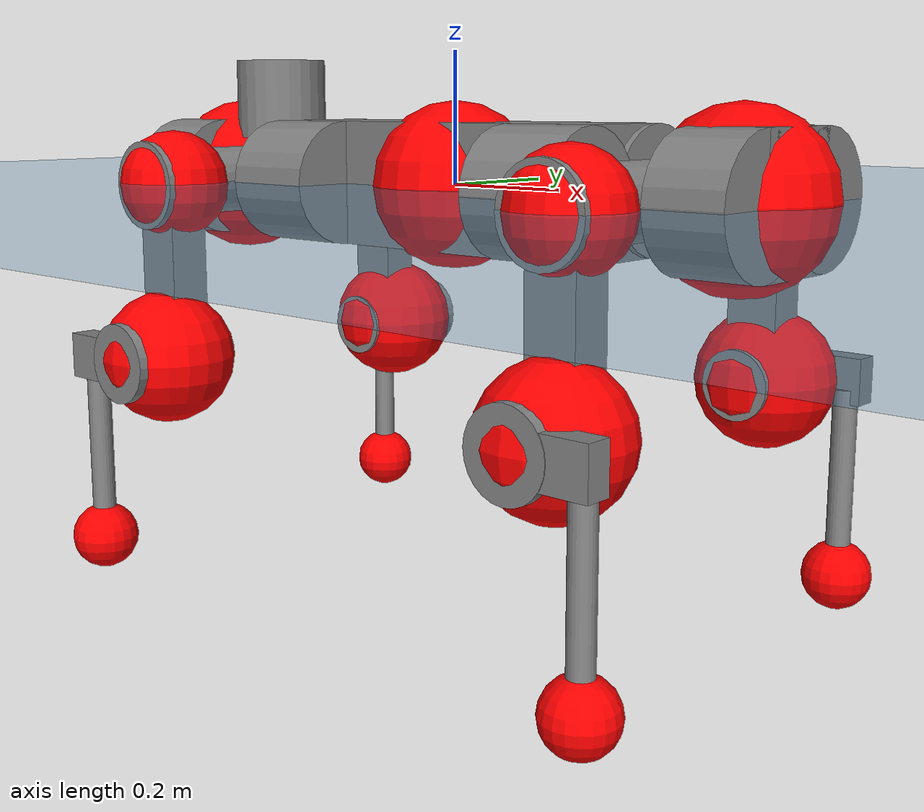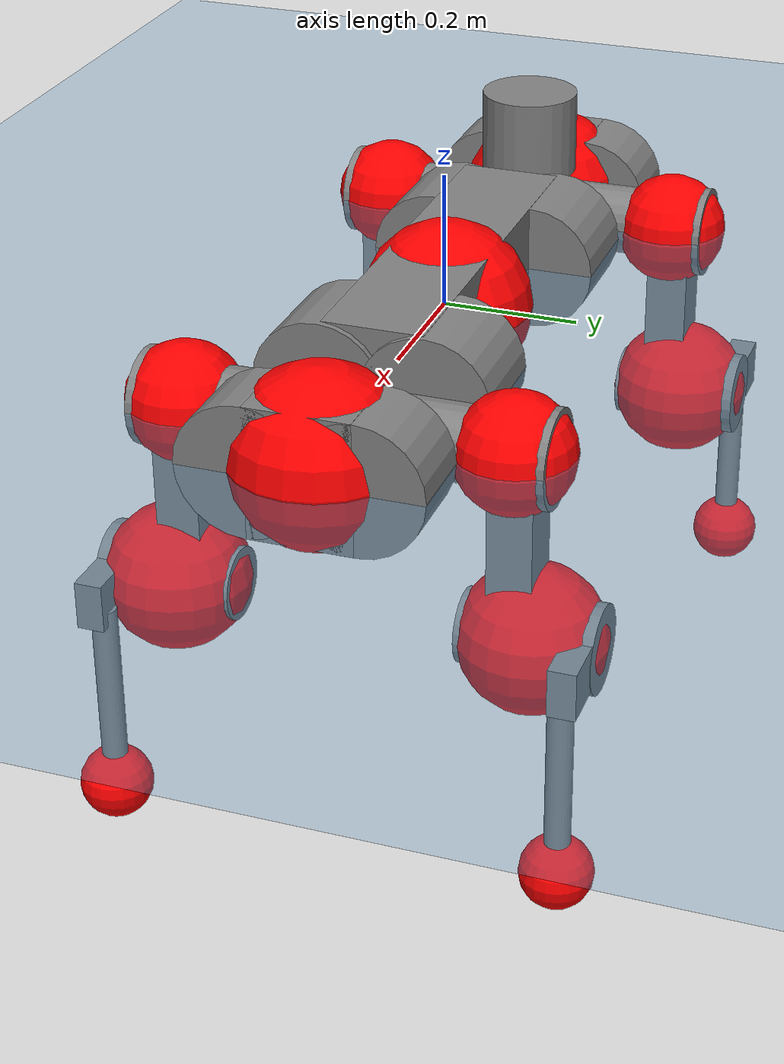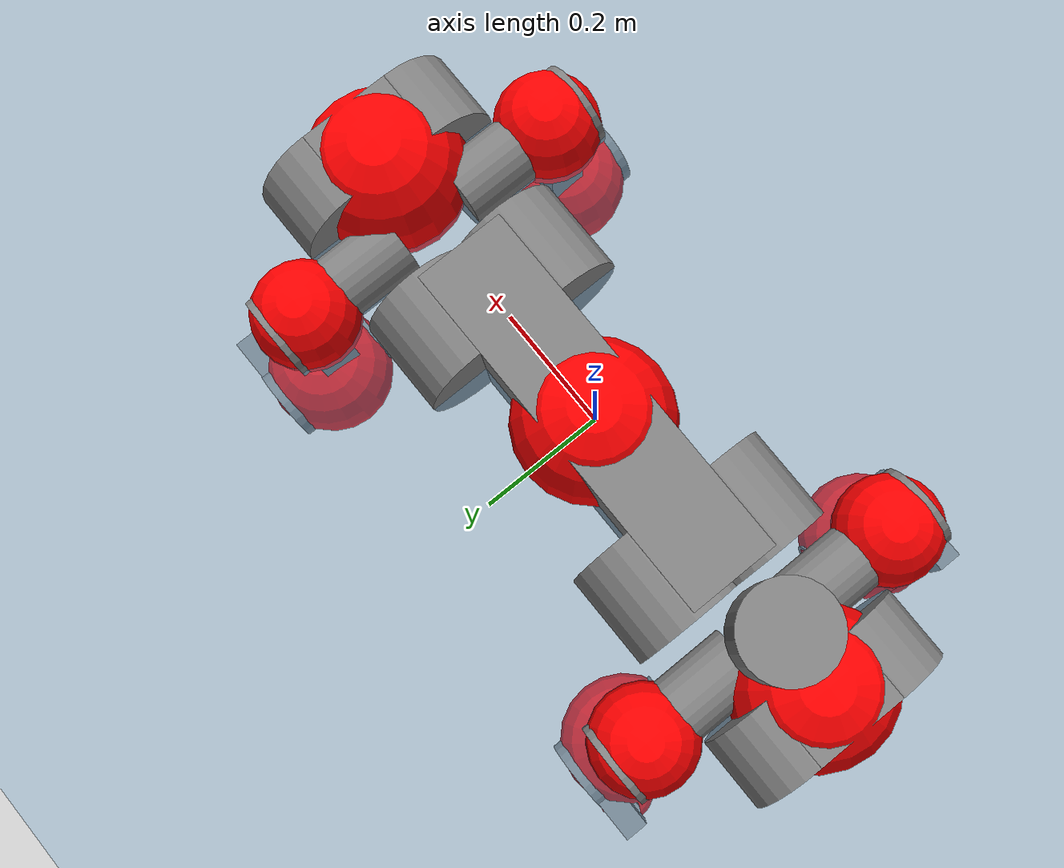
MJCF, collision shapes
<mujoco model="anymal_c">
  <compiler angle="radian" assetdir="assets" balanceinertia="true" inertiafromgeom="false"/>

  <option timestep="0.005" density="1.2" viscosity="2e-05"/>

  <size nkey="1"/>

  <visual>
    <quality shadowsize="8192"/>
    <map shadowclip="0.5"/>
  </visual>

  <default>
    <default class="/">
      <material specular="0" shininess="0.25"/>
      <geom contype="0" conaffinity="0" group="1" solref="-1000 -80"/>
      <site size="0.01 0.005 0.005" group="5"/>
      <general forcelimited="true" forcerange="-80 80" biastype="affine" gainprm="80" biasprm="0 -80 -2"/>
      <default class="anymal_c">
        <joint armature="0.01" damping="0.01" frictionloss="0.1"/>
        <default class="visual">
          <geom type="mesh" group="2"/>
          <default class="visual_zflip"/>
        </default>
        <default class="collision">
          <geom type="cylinder" group="3"/>
          <default class="foot">
            <geom size="0.03 0 0" type="sphere" condim="6" priority="1" friction="0.8 0.02 0.01" solimp="0.015 1 0.03"/>
          </default>
        </default>
      </default>
      <default class="reward_collision_sphere">
        <geom group="5" rgba="1 0 0 1"/>
      </default>
    </default>
  </default>

  <asset>
    <texture type="skybox" colorspace="auto" name="//unnamed_texture_0" builtin="gradient" rgb1="0.95 0.95 0.95" rgb2="0.95 0.95 0.95" width="100" height="600"/>
    <texture type="2d" colorspace="auto" name="texplane" builtin="checker" rgb1="0.345 0.575 0.748" rgb2="0.345 0.575 0.748" markrgb="1 1 1" width="512" height="512"/>
    <texture type="2d" colorspace="linear" name="base" file="base.png"/>
    <texture type="2d" colorspace="linear" name="top_shell" file="top_shell.png"/>
    <texture type="2d" colorspace="linear" name="bottom_shell" file="bottom_shell.png"/>
    <texture type="2d" colorspace="linear" name="remote" file="remote.png"/>
    <texture type="2d" colorspace="linear" name="hatch" file="hatch.png"/>
    <texture type="2d" colorspace="linear" name="handle" file="handle.png"/>
    <texture type="2d" colorspace="linear" name="face" file="face.png"/>
    <texture type="2d" colorspace="linear" name="battery" file="battery.png"/>
    <texture type="2d" colorspace="linear" name="lidar_cage" file="lidar_cage.png"/>
    <texture type="2d" colorspace="linear" name="depth_camera" file="depth_camera.png"/>
    <texture type="2d" colorspace="linear" name="wide_angle_camera" file="wide_angle_camera.png"/>
    <texture type="2d" colorspace="linear" name="lidar" file="lidar.png"/>
    <texture type="2d" colorspace="linear" name="drive" file="drive.png"/>
    <texture type="2d" colorspace="linear" name="hip_l" file="hip_l.png"/>
    <texture type="2d" colorspace="linear" name="shank_l" file="shank_l.png"/>
    <texture type="2d" colorspace="linear" name="foot" file="foot.png"/>
    <texture type="2d" colorspace="linear" name="thigh" file="thigh.png"/>
    <texture type="2d" colorspace="linear" name="shank_r" file="shank_r.png"/>
    <texture type="2d" colorspace="linear" name="hip_r" file="hip_r.png"/>
    <material name="MatPlane" class="/" texture="texplane" texuniform="true" texrepeat="2 2" specular="0.9" shininess="0.5"/>
    <material name="black_plastic" class="/" rgba="0.007 0.007 0.007 1"/>
    <material name="green" class="/" rgba="0.052 0.178 0.033 1"/>
    <material name="red" class="/" rgba="0.178 0.006 0.005 1"/>
    <material name="yellow" class="/" rgba="0.178 0.119 0.006 1"/>
    <material name="lwl" class="/" rgba="0.8 0.8 0.8 1"/>
    <material name="base" class="/" texture="base"/>
    <material name="top_shell" class="/" texture="top_shell"/>
    <material name="bottom_shell" class="/" texture="bottom_shell"/>
    <material name="hip_l" class="/" texture="hip_l"/>
    <material name="thigh" class="/" texture="thigh"/>
    <material name="shank_l" class="/" texture="shank_l"/>
    <material name="foot" class="/" texture="foot"/>
    <material name="hip_r" class="/" texture="hip_r"/>
    <material name="shank" class="/" texture="shank_r"/>
    <material name="hatch" class="/" texture="hatch"/>
    <material name="remote" class="/" texture="remote"/>
    <material name="handle" class="/" texture="handle"/>
    <material name="face" class="/" texture="face"/>
    <material name="depth_camera" class="/" texture="depth_camera"/>
    <material name="wide_angle_camera" class="/" texture="wide_angle_camera"/>
    <material name="battery" class="/" texture="battery"/>
    <material name="lidar_cage" class="/" texture="lidar_cage"/>
    <material name="lidar" class="/" texture="lidar"/>
    <material name="drive" class="/" texture="drive"/>
    <mesh name="base_0" class="/" file="base_0.obj"/>
    <mesh name="base_1" class="/" file="base_1.obj"/>
    <mesh name="base_2" class="/" file="base_2.obj"/>
    <mesh name="base_3" class="/" file="base_3.obj"/>
    <mesh name="base_4" class="/" file="base_4.obj"/>
    <mesh name="base_5" class="/" file="base_5.obj"/>
    <mesh name="top_shell" class="/" file="top_shell.obj"/>
    <mesh name="bottom_shell" class="/" file="bottom_shell.obj"/>
    <mesh name="remote" class="/" file="remote.obj"/>
    <mesh name="handle" class="/" file="handle.obj"/>
    <mesh name="face" class="/" file="face.obj"/>
    <mesh name="wide_angle_camera" class="/" file="wide_angle_camera.obj"/>
    <mesh name="depth_camera" class="/" file="depth_camera.obj"/>
    <mesh name="battery" class="/" file="battery.obj"/>
    <mesh name="lidar_cage" class="/" file="lidar_cage.obj"/>
    <mesh name="lidar" class="/" file="lidar.obj"/>
    <mesh name="drive" class="/" file="drive.obj"/>
    <mesh name="hip_l" class="/" file="hip_l.obj"/>
    <mesh name="thigh" class="/" file="thigh.obj"/>
    <mesh name="shank_l" class="/" file="shank_l.obj"/>
    <mesh name="foot" class="/" file="foot.obj"/>
    <mesh name="hip_r" class="/" file="hip_r.obj"/>
    <mesh name="hatch" class="/" file="hatch.obj"/>
    <mesh name="shank_r" class="/" file="shank_r.obj"/>
  </asset>

  <worldbody>
    <geom name="floor" class="/" size="100 100 0.125" type="plane" group="0" material="MatPlane"/>
    <light name="toplight_shadow" class="/" pos="0 0 5" dir="0.0990148 0.0990148 -0.990148" type="directional" ambient="0.04 0.04 0.04" diffuse="0.55 0.55 0.55" specular="0.12 0.12 0.12"/>
    <light name="toplight_fill" class="/" pos="0 0 5" dir="0.0990148 0.0990148 -0.990148" type="directional" castshadow="false" ambient="0.04 0.04 0.04" diffuse="0.3 0.3 0.3" specular="0.08 0.08 0.08"/>
    <body name="trunk" childclass="anymal_c" pos="-0.00135854 0.00258134 -0.000255233" quat="0.999999 0.000692407 -0.00096919 0.000173259">
      <inertial pos="0.00236429 -0.00169877 0.0487447" quat="0.504531 0.504742 0.497733 0.492894" mass="23.3287" diaginertia="1.023 1.03582 0.182093"/>
      <joint name="//unnamed_joint_0" type="free" armature="0" damping="0" frictionloss="0"/>
      <geom name="//unnamed_geom_1" class="visual" material="green" mesh="base_0"/>
      <geom name="//unnamed_geom_2" class="visual" material="yellow" mesh="base_1"/>
      <geom name="//unnamed_geom_3" class="visual" material="red" mesh="base_2"/>
      <geom name="//unnamed_geom_4" class="visual" material="black_plastic" mesh="base_3"/>
      <geom name="//unnamed_geom_5" class="visual" material="lwl" mesh="base_4"/>
      <geom name="//unnamed_geom_6" class="visual" material="base" mesh="base_5"/>
      <geom name="trunk_1" class="collision" size="0.306991 0.0741012 0.095273" type="box"/>
      <geom name="trunk_2" class="collision" size="0.095273 0.0767477" pos="0.240086 0.0773482 0" quat="0.707107 0 0.707107 0"/>
      <geom name="trunk_3" class="collision" size="0.095273 0.0767477" pos="-0.240086 0.0773482 0" quat="0.707107 0 0.707107 0"/>
      <geom name="trunk_4" class="collision" size="0.095273 0.0767477" pos="0.240086 -0.0773482 0" quat="0.707107 0 0.707107 0"/>
      <geom name="trunk_5" class="collision" size="0.095273 0.0767477" pos="-0.240086 -0.0773482 0" quat="0.707107 0 0.707107 0"/>
      <geom name="//unnamed_geom_12" class="visual" material="top_shell" mesh="top_shell"/>
      <geom name="//unnamed_geom_13" class="visual" material="bottom_shell" mesh="bottom_shell"/>
      <geom name="//unnamed_geom_14" class="visual" material="remote" mesh="remote"/>
      <geom name="//unnamed_geom_15" class="visual" material="handle" mesh="handle"/>
      <geom name="//unnamed_geom_16" class="visual" pos="0.457543 0 0" quat="1 0 0 0" material="face" mesh="face"/>
      <geom name="trunk_6" class="collision" size="0.0582224 0.0741012 0.095273" pos="0.518254 0 0" type="box"/>
      <geom name="//unnamed_geom_18" class="collision" size="0.095273 0.0582224" pos="0.518254 0.0773482 0" quat="0.707107 0 0.707107 0"/>
      <geom name="//unnamed_geom_19" class="collision" size="0.095273 0.0582224" pos="0.518254 -0.0773482 0" quat="0.707107 0 0.707107 0"/>
      <geom name="//unnamed_geom_20" class="visual" pos="0.509583 0 -0.0271946" quat="0.965926 0 0.258819 0" material="depth_camera" mesh="depth_camera"/>
      <geom name="//unnamed_geom_21" class="visual" pos="0.566271 0 0.0144753" material="wide_angle_camera" mesh="wide_angle_camera"/>
      <geom name="//unnamed_geom_22" class="visual_zflip" pos="-0.457543 0 0" quat="0 0 0 1" material="face" mesh="face"/>
      <geom name="trunk_7" class="collision" size="0.0582224 0.0741012 0.095273" pos="-0.518254 0 0" quat="0 0 0 1" type="box"/>
      <geom name="//unnamed_geom_24" class="collision" size="0.095273 0.0582224" pos="-0.518254 -0.0773482 0" quat="0 -0.707107 0 0.707107"/>
      <geom name="//unnamed_geom_25" class="collision" size="0.095273 0.0582224" pos="-0.518254 0.0773482 0" quat="0 -0.707107 0 0.707107"/>
      <geom name="//unnamed_geom_26" class="visual" pos="-0.509583 0 -0.0271946" quat="0 -0.258819 0 0.965926" material="depth_camera" mesh="depth_camera"/>
      <geom name="//unnamed_geom_27" class="visual_zflip" pos="-0.566271 0 0.0144753" quat="0 0 0 1" material="wide_angle_camera" mesh="wide_angle_camera"/>
      <geom name="//unnamed_geom_28" class="visual" material="battery" mesh="battery"/>
      <geom name="//unnamed_geom_29" class="visual" pos="0 0.0844955 0.0291303" quat="0.683013 -0.183013 0.183013 0.683013" material="depth_camera" mesh="depth_camera"/>
      <geom name="//unnamed_geom_30" class="visual" pos="0 -0.0844955 0.0291303" quat="0.683013 0.183013 0.183013 -0.683013" material="depth_camera" mesh="depth_camera"/>
      <geom name="//unnamed_geom_31" class="visual" pos="-0.401798 0 0.0710709" quat="1 0 0 0" material="lidar_cage" mesh="lidar_cage"/>
      <geom name="trunk_8" class="collision" size="0.0741012 0.0635153" pos="-0.401798 0 0.129088"/>
      <geom name="//unnamed_geom_33" class="visual" pos="-0.401798 4.44835e-07 0.1375" quat="0.707107 0 0 -0.707107" material="lidar" mesh="lidar"/>
      <geom name="//unnamed_geom_34" class="visual" pos="0.331042 0.114868 2.38092e-09" quat="0.258819 0.965926 0 0" material="drive" mesh="drive"/>
      <geom name="//unnamed_geom_35" class="visual" pos="0.331042 -0.114868 -2.38092e-09" quat="0.258819 -0.965926 0 0" material="drive" mesh="drive"/>
      <geom name="//unnamed_geom_36" class="visual" pos="-0.331042 0.114868 -2.38092e-09" quat="0 0 0.965926 -0.258819" material="drive" mesh="drive"/>
      <geom name="//unnamed_geom_37" class="visual" pos="-0.331042 -0.114868 2.38092e-09" quat="0 0 -0.965926 -0.258819" material="drive" mesh="drive"/>
      <geom name="//unnamed_geom_38" class="visual" pos="0.128046 0 0.0705874" quat="1 0 0 0" material="hatch" mesh="hatch"/>
      <geom name="//unnamed_geom_39" class="reward_collision_sphere" size="0.127031"/>
      <geom name="//unnamed_geom_40" class="reward_collision_sphere" size="0.127031" pos="0.496729 0 0"/>
      <geom name="//unnamed_geom_41" class="reward_collision_sphere" size="0.127031" pos="-0.496729 0 0"/>
      <site name="imu" pos="0.287365 0.00221206 0.0578755" size="0.0105859"/>
      <camera name="track" pos="0 -2.20995 0" quat="0.707107 0.707107 0 0" mode="trackcom"/>
      <camera name="ego_camera" pos="0.496729 0 -0.038678" quat="-0.5 -0.5 0.5 0.5"/>
      <body name="LF_HIP" pos="0.333039 0.114121 -0.00244079" quat="0.259209 0.965821 -2.30138e-05 8.7374e-05">
        <inertial pos="0.0646864 -0.0192198 -0.00704314" quat="-0.12555 0.710326 -0.136882 0.678924" mass="3.22535" diaginertia="0.0093952 0.00809099 0.00275804"/>
        <joint name="LF_HAA" pos="0 0 0" axis="0.999821 -0.016956 -0.00838955" stiffness="0.00682874" range="-0.728081 0.492381" armature="0.0119801" damping="0.0225096" frictionloss="0.117615"/>
        <geom name="//unnamed_geom_42" class="visual" pos="0 0.000140059 -2.30045e-05" quat="0.258819 -0.965926 0 0" material="hip_l" mesh="hip_l"/>
        <geom name="//unnamed_geom_43" class="visual" pos="0.0661201 -0.0800845 -0.0452159" quat="0.183013 -0.683013 0.683013 0.183013" material="drive" mesh="drive"/>
        <geom name="//unnamed_geom_44" class="collision" size="0.0529295 0.0741012" pos="0.0661201 -0.0132153 -0.0066768" quat="-0.353553 -0.612372 0.612372 -0.353553"/>
        <body name="LF_THIGH" pos="0.0648665 -0.0796308 -0.0415185" quat="0.183597 -0.682887 0.683216 0.182136">
          <inertial pos="0.0344645 -5.36302e-06 -0.234471" quat="0.994288 -0.0101031 -0.0728932 0.0772987" mass="3.50982" diaginertia="0.0474993 0.0476946 0.00344996"/>
          <joint name="LF_HFE" pos="0 0 0" axis="0.999917 -0.0125056 -0.0029339" range="-3.0946 3.14337" armature="0.0103046" damping="0" frictionloss="0.096704"/>
          <geom name="//unnamed_geom_45" class="visual" pos="-2.25276e-05 -3.54982e-08 0" quat="0.707107 0 0 -0.707107" material="thigh" mesh="thigh"/>
          <geom name="//unnamed_geom_46" class="collision" size="0.0688083 0.0423436" pos="0.0441537 0 0" quat="0.5 0.5 -0.5 -0.5"/>
          <geom name="//unnamed_geom_47" class="collision" size="0.0396971 0.0317577 0.149593" pos="0.0331153 0 -0.136644" quat="0.707107 0 0 -0.707107" type="box"/>
          <geom name="//unnamed_geom_48" class="visual" pos="0.110715 0 -0.275581" quat="1 0 0 0" material="drive" mesh="drive"/>
          <geom name="//unnamed_geom_49" class="collision" size="0.0529295 0.0741012" pos="0.0334464 0 -0.275581" quat="0.707107 0 0.707107 0"/>
          <geom name="//unnamed_geom_50" class="reward_collision_sphere" size="0.0846871" pos="0.027596 0 0"/>
          <body name="LF_SHANK" pos="0.110387 0.00323236 -0.278498" quat="1 -8.02088e-05 0.000254806 -9.98894e-05">
            <inertial pos="0.0083283 -0.0699323 -0.0780302" quat="0.993517 -0.112611 -0.000707841 -0.0155466" mass="0.725005" diaginertia="0.0169262 0.0154035 0.000972388"/>
            <joint name="LF_KFE" pos="0 0 0" axis="0.999873 0.014484 -0.00664237" range="-3.15648 3.10429" armature="0.0101604" damping="0.00685216" frictionloss="0.109611"/>
            <geom name="//unnamed_geom_51" class="visual" pos="-7.34574e-06 -3.91679e-05 0" quat="0.707107 0 0 -0.707107" material="shank_l" mesh="shank_l"/>
            <geom name="LF_kfe_act" class="collision" size="0.0635153 0.0211718" pos="0.0220768 0 0" quat="0.5 0.5 -0.5 -0.5"/>
            <geom name="//unnamed_geom_53" class="collision" size="0.0608678 0.0357274 0.0201132" pos="0.0220768 -0.0635349 0" quat="0.5 0.5 -0.5 -0.5" type="box"/>
            <geom name="//unnamed_geom_54" class="visual" pos="0.0144051 -0.0971951 -0.3268" quat="0.382683 0 0 -0.92388" material="foot" mesh="foot"/>
            <geom name="LF_calf" class="collision" size="0.0185253 0.149528" pos="0.0144051 -0.0971825 -0.1634" quat="0.707107 0 0 -0.707107"/>
            <geom name="LF_foot" class="foot" size="0.0331346" pos="0.0144051 -0.0971825 -0.305044" quat="0.707107 0 0 -0.707107"/>
            <geom name="//unnamed_geom_57" class="reward_collision_sphere" size="0.105859" pos="-0.0551921 0 0"/>
            <geom name="//unnamed_geom_58" class="reward_collision_sphere" size="0.0529295" pos="0.0144051 -0.0971825 -0.305044"/>
            <site name="LF_foot" class="foot" pos="0.0144051 -0.0971825 -0.305044" quat="0.707107 0 0 -0.707107" size="0.0105859"/>
          </body>
        </body>
      </body>
      <body name="RF_HIP" pos="0.334224 -0.118339 0.00041714" quat="0.259462 -0.965753 0.00018274 0.000104816">
        <inertial pos="0.0598009 0.020052 -0.00620602" quat="0.129421 0.677967 0.124608 0.7128" mass="3.25946" diaginertia="0.00931803 0.00775203 0.00269432"/>
        <joint name="RF_HAA" pos="0 0 0" axis="0.999986 0.00395623 0.00353474" range="-0.451274 0.747795" armature="0.0103375" damping="0.0155531" frictionloss="0.109035"/>
        <geom name="//unnamed_geom_59" class="visual" pos="0 -0.000140058 -2.30045e-05" quat="0.258819 0.965926 0 0" material="hip_r" mesh="hip_r"/>
        <geom name="//unnamed_geom_60" class="visual" pos="0.0661201 0.0800845 -0.0452159" quat="0.183013 0.683013 0.683013 -0.183013" material="drive" mesh="drive"/>
        <geom name="//unnamed_geom_61" class="collision" size="0.0529295 0.0741012" pos="0.0661201 0.0132153 -0.0066768" quat="-0.353553 0.612372 0.612372 0.353553"/>
        <body name="RF_THIGH" pos="0.0659576 0.0785117 -0.039342" quat="0.182293 0.682918 0.683309 -0.18298">
          <inertial pos="0.0319602 -0.00386301 -0.234908" quat="0.992929 -0.00468687 -0.0804936 0.0871227" mass="3.75574" diaginertia="0.0496712 0.0519515 0.00366224"/>
          <joint name="RF_HFE" pos="0 0 0" axis="0.999958 0.00539937 -0.00736348" stiffness="0.0140475" range="-3.16837 3.18308" armature="0.00910382" damping="0.00975391" frictionloss="0.116594"/>
          <geom name="//unnamed_geom_62" class="visual" pos="-2.25276e-05 -3.54982e-08 0" quat="0.707107 0 0 -0.707107" material="thigh" mesh="thigh"/>
          <geom name="//unnamed_geom_63" class="collision" size="0.0688083 0.0423436" pos="0.0441537 0 0" quat="0.5 0.5 0.5 0.5"/>
          <geom name="//unnamed_geom_64" class="collision" size="0.0396971 0.0317577 0.149593" pos="0.0331153 0 -0.136644" quat="0.707107 0 0 0.707107" type="box"/>
          <geom name="//unnamed_geom_65" class="visual" pos="0.110715 0 -0.275581" quat="1 0 0 0" material="drive" mesh="drive"/>
          <geom name="//unnamed_geom_66" class="collision" size="0.0529295 0.0741012" pos="0.0334464 0 -0.275581" quat="0.707107 0 0.707107 0"/>
          <geom name="//unnamed_geom_67" class="reward_collision_sphere" size="0.0846871" pos="0.027596 0 0"/>
          <body name="RF_SHANK" pos="0.110607 0.0030427 -0.276288" quat="0.999999 1.35705e-05 -0.00149787 -1.21054e-05">
            <inertial pos="0.00205771 0.066515 -0.0785312" quat="0.992976 0.113238 0.00170223 0.0342619" mass="0.68944" diaginertia="0.0167523 0.0147466 0.000892857"/>
            <joint name="RF_KFE" pos="0 0 0" axis="0.999919 -0.0119533 -0.00429676" range="-3.09604 3.13243" armature="0.0114387" damping="0" frictionloss="0.099665"/>
            <geom name="//unnamed_geom_68" class="visual" pos="-7.3457e-06 3.91678e-05 0" quat="0.707107 0 0 0.707107" material="shank" mesh="shank_r"/>
            <geom name="RF_kfe_act" class="collision" size="0.0635153 0.0211718" pos="0.0220768 0 0" quat="0.5 0.5 0.5 0.5"/>
            <geom name="//unnamed_geom_70" class="collision" size="0.0608678 0.0357274 0.0201132" pos="0.0220768 0.0635349 0" quat="0.5 0.5 0.5 0.5" type="box"/>
            <geom name="//unnamed_geom_71" class="visual" pos="0.0144051 0.0971951 -0.3268" quat="0.382683 0 0 0.92388" material="foot" mesh="foot"/>
            <geom name="RF_calf" class="collision" size="0.0185253 0.149528" pos="0.0144051 0.0971825 -0.1634" quat="0.707107 0 0 0.707107"/>
            <geom name="RF_foot" class="foot" size="0.0290652" pos="0.0144051 0.0971825 -0.305044" quat="0.707107 0 0 0.707107"/>
            <geom name="//unnamed_geom_74" class="reward_collision_sphere" size="0.105859" pos="-0.0551921 0 0"/>
            <geom name="//unnamed_geom_75" class="reward_collision_sphere" size="0.0529295" pos="0.0144051 0.0971825 -0.305044"/>
            <site name="RF_foot" class="foot" pos="0.0144051 0.0971825 -0.305044" quat="0.707107 0 0 0.707107" size="0.0105859"/>
          </body>
        </body>
      </body>
      <body name="LH_HIP" pos="-0.335071 0.116176 -0.000878112" quat="0.000598415 -0.000550797 0.966048 -0.25836">
        <inertial pos="0.0603436 0.0205583 -0.00851595" quat="0.136851 0.680903 0.131531 0.707349" mass="3.22928" diaginertia="0.00936661 0.0081959 0.00283105"/>
        <joint name="LH_HAA" pos="0 0 0" axis="0.999916 0.000756173 0.0129344" range="-0.474927 0.774627" armature="0.010631" damping="0.00836277" frictionloss="0.0919415"/>
        <geom name="//unnamed_geom_76" class="visual" pos="0 -0.000140058 -2.30045e-05" quat="-0.258819 -0.965926 0 0" material="hip_r" mesh="hip_r"/>
        <geom name="//unnamed_geom_77" class="visual" pos="0.0661201 0.0800845 -0.0452159" quat="0.183013 0.683013 0.683013 -0.183013" material="drive" mesh="drive"/>
        <geom name="//unnamed_geom_78" class="collision" size="0.0529295 0.0741012" pos="0.0661201 0.0132153 -0.0066768" quat="-0.353553 0.612372 0.612372 0.353553"/>
        <body name="LH_THIGH" pos="0.0674103 0.08296 -0.0418214" quat="0.181987 0.683442 0.683136 -0.181971">
          <inertial pos="0.0362814 -0.00260012 -0.237333" quat="0.992767 -0.0051998 -0.0810657 0.0884049" mass="3.76965" diaginertia="0.0493219 0.0496095 0.00371351"/>
          <joint name="LH_HFE" pos="0 0 0" axis="0.999965 -0.00234149 0.00798605" range="-3.12395 3.1658" armature="0.00945885" damping="0.0215207" frictionloss="0.102316"/>
          <geom name="//unnamed_geom_79" class="visual" pos="-2.25276e-05 -3.54982e-08 0" quat="0.707107 0 0 -0.707107" material="thigh" mesh="thigh"/>
          <geom name="//unnamed_geom_80" class="collision" size="0.0688083 0.0423436" pos="0.0441537 0 0" quat="0.5 0.5 -0.5 -0.5"/>
          <geom name="//unnamed_geom_81" class="collision" size="0.0396971 0.0317577 0.149593" pos="0.0331153 0 -0.136644" quat="0.707107 0 0 -0.707107" type="box"/>
          <geom name="//unnamed_geom_82" class="visual" pos="0.110715 0 -0.275581" quat="1 0 0 0" material="drive" mesh="drive"/>
          <geom name="//unnamed_geom_83" class="collision" size="0.0529295 0.0741012" pos="0.0334464 0 -0.275581" quat="0.707107 0 0.707107 0"/>
          <geom name="//unnamed_geom_84" class="reward_collision_sphere" size="0.0846871" pos="0.027596 0 0"/>
          <body name="LH_SHANK" pos="0.109532 -0.000760461 -0.272345" quat="0.999999 0.00136989 -0.000148917 -0.000906859">
            <inertial pos="0.00687967 0.0676906 -0.0820477" quat="0.992096 0.122617 -0.00790446 0.0254563" mass="0.706229" diaginertia="0.016655 0.0146289 0.0009289"/>
            <joint name="LH_KFE" pos="0 0 0" axis="0.999929 0.00943995 -0.00722968" range="-3.10135 3.11403" armature="0.011862" damping="0.00429788" frictionloss="0.10585"/>
            <geom name="//unnamed_geom_85" class="visual" pos="-7.3457e-06 3.91678e-05 0" quat="-0.707107 0 0 -0.707107" material="shank" mesh="shank_r"/>
            <geom name="LH_kfe_act" class="collision" size="0.0635153 0.0211718" pos="0.0220768 0 0" quat="0.5 0.5 -0.5 -0.5"/>
            <geom name="//unnamed_geom_87" class="collision" size="0.0608678 0.0357274 0.0201132" pos="0.0220768 0.0635349 0" quat="0.5 0.5 -0.5 -0.5" type="box"/>
            <geom name="//unnamed_geom_88" class="visual" pos="0.0144051 0.0971951 -0.3268" quat="-0.382683 0 0 -0.92388" material="foot" mesh="foot"/>
            <geom name="LH_calf" class="collision" size="0.0185253 0.149528" pos="0.0144051 0.0971825 -0.1634" quat="0.707107 0 0 -0.707107"/>
            <geom name="LH_foot" class="foot" size="0.0323075" pos="0.0144051 0.0971825 -0.305044" quat="0.707107 0 0 -0.707107"/>
            <geom name="//unnamed_geom_91" class="reward_collision_sphere" size="0.105859" pos="-0.0551921 0 0"/>
            <geom name="//unnamed_geom_92" class="reward_collision_sphere" size="0.0529295" pos="0.0144051 0.0971825 -0.305044"/>
            <site name="LH_foot" class="foot" pos="0.0144051 0.0971825 -0.305044" quat="0.707107 0 0 -0.707107" size="0.0105859"/>
          </body>
        </body>
      </body>
      <body name="RH_HIP" pos="-0.328569 -0.111597 0.000227827" quat="-0.000488339 0.000833856 -0.966054 -0.258338">
        <inertial pos="0.0630556 -0.0149538 -0.0082596" quat="-0.119021 0.705145 -0.13983 0.684874" mass="3.22525" diaginertia="0.00956614 0.00801862 0.00276085"/>
        <joint name="RH_HAA" pos="0 0 0" axis="0.9999 0.00494303 0.0132271" range="-0.714878 0.546646" armature="0.00924183" damping="0.0212145" frictionloss="0.101533"/>
        <geom name="//unnamed_geom_93" class="visual" pos="0 0.000140059 -2.30045e-05" quat="-0.258819 0.965926 0 0" material="hip_l" mesh="hip_l"/>
        <geom name="//unnamed_geom_94" class="visual" pos="0.0661201 -0.0800845 -0.0452159" quat="-0.183013 0.683013 -0.683013 -0.183013" material="drive" mesh="drive"/>
        <geom name="//unnamed_geom_95" class="collision" size="0.0529295 0.0741012" pos="0.0661201 -0.0132153 -0.0066768" quat="0.353553 0.612372 -0.612372 0.353553"/>
        <body name="RH_THIGH" pos="0.067682 -0.0814886 -0.0421894" quat="-0.183137 0.683399 -0.682239 -0.184328">
          <inertial pos="0.0368612 -0.000459561 -0.234754" quat="0.991555 -0.0131185 -0.0820314 0.0995828" mass="3.49225" diaginertia="0.0492668 0.0483812 0.00334004"/>
          <joint name="RH_HFE" pos="0 0 0" axis="0.999903 0.00451695 0.0131855" range="-3.15822 3.19752" armature="0.0102761" damping="0.0161212" frictionloss="0.0944027"/>
          <geom name="//unnamed_geom_96" class="visual" pos="-2.25276e-05 -3.54982e-08 0" quat="0.707107 0 0 -0.707107" material="thigh" mesh="thigh"/>
          <geom name="//unnamed_geom_97" class="collision" size="0.0688083 0.0423436" pos="0.0441537 0 0" quat="0.5 0.5 0.5 0.5"/>
          <geom name="//unnamed_geom_98" class="collision" size="0.0396971 0.0317577 0.149593" pos="0.0331153 0 -0.136644" quat="0.707107 0 0 0.707107" type="box"/>
          <geom name="//unnamed_geom_99" class="visual" pos="0.110715 0 -0.275581" quat="1 0 0 0" material="drive" mesh="drive"/>
          <geom name="//unnamed_geom_100" class="collision" size="0.0529295 0.0741012" pos="0.0334464 0 -0.275581" quat="0.707107 0 0.707107 0"/>
          <geom name="//unnamed_geom_101" class="reward_collision_sphere" size="0.0846871" pos="0.027596 0 0"/>
          <body name="RH_SHANK" pos="0.107917 0.00120419 -0.275146" quat="1 -7.87079e-06 1.06093e-05 1.31804e-05">
            <inertial pos="0.00728226 -0.0646896 -0.0802461" quat="0.992934 -0.115904 -0.00100145 -0.0254324" mass="0.685506" diaginertia="0.0162859 0.0148988 0.000937795"/>
            <joint name="RH_KFE" pos="0 0 0" axis="1 -0.000196849 0.000171093" range="-3.17611 3.09348" armature="0.0108101" damping="0.0184827" frictionloss="0.0927457"/>
            <geom name="//unnamed_geom_102" class="visual" pos="-7.34574e-06 -3.91679e-05 0" quat="0.707107 0 0 -0.707107" material="shank_l" mesh="shank_l"/>
            <geom name="RH_kfe_act" class="collision" size="0.0635153 0.0211718" pos="0.0220768 0 0" quat="0.5 0.5 0.5 0.5"/>
            <geom name="//unnamed_geom_104" class="collision" size="0.0608678 0.0357274 0.0201132" pos="0.0220768 -0.0635349 0" quat="0.5 0.5 0.5 0.5" type="box"/>
            <geom name="//unnamed_geom_105" class="visual" pos="0.0144051 -0.0971951 -0.3268" quat="0.382683 0 0 -0.92388" material="foot" mesh="foot"/>
            <geom name="RH_calf" class="collision" size="0.0185253 0.149528" pos="0.0144051 -0.0971825 -0.1634" quat="0.707107 0 0 0.707107"/>
            <geom name="RH_foot" class="foot" size="0.0289384" pos="0.0144051 -0.0971825 -0.305044" quat="0.707107 0 0 0.707107"/>
            <geom name="//unnamed_geom_108" class="reward_collision_sphere" size="0.105859" pos="-0.0551921 0 0"/>
            <geom name="//unnamed_geom_109" class="reward_collision_sphere" size="0.0529295" pos="0.0144051 -0.0971825 -0.305044"/>
            <site name="RH_foot" class="foot" pos="0.0144051 -0.0971825 -0.305044" quat="0.707107 0 0 0.707107" size="0.0105859"/>
          </body>
        </body>
      </body>
    </body>
  </worldbody>

  <contact>
    <pair class="/" geom1="floor" geom2="LF_foot" name="//unnamed_contact_0"/>
    <pair class="/" geom1="floor" geom2="RF_foot" name="//unnamed_contact_1"/>
    <pair class="/" geom1="floor" geom2="LH_foot" name="//unnamed_contact_2"/>
    <pair class="/" geom1="floor" geom2="RH_foot" name="//unnamed_contact_3"/>
  </contact>

  <actuator>
    <general name="LF_HAA" class="/" joint="LF_HAA" forcerange="-86.7023 86.7023" gainprm="84.8933" biasprm="0 -84.8933 -2.30163"/>
    <general name="LF_HFE" class="/" joint="LF_HFE" forcerange="-86.6712 86.6712" gainprm="84.8933" biasprm="0 -84.8933 -2.30163"/>
    <general name="LF_KFE" class="/" joint="LF_KFE" forcerange="-92.7664 92.7664" gainprm="84.8933" biasprm="0 -84.8933 -2.30163"/>
    <general name="RF_HAA" class="/" joint="RF_HAA" forcerange="-83.4401 83.4401" gainprm="84.8933" biasprm="0 -84.8933 -2.30163"/>
    <general name="RF_HFE" class="/" joint="RF_HFE" forcerange="-93.0014 93.0014" gainprm="84.8933" biasprm="0 -84.8933 -2.30163"/>
    <general name="RF_KFE" class="/" joint="RF_KFE" forcerange="-89.9278 89.9278" gainprm="84.8933" biasprm="0 -84.8933 -2.30163"/>
    <general name="LH_HAA" class="/" joint="LH_HAA" forcerange="-85.9887 85.9887" gainprm="84.8933" biasprm="0 -84.8933 -2.30163"/>
    <general name="LH_HFE" class="/" joint="LH_HFE" forcerange="-89.3751 89.3751" gainprm="84.8933" biasprm="0 -84.8933 -2.30163"/>
    <general name="LH_KFE" class="/" joint="LH_KFE" forcerange="-79.4313 79.4313" gainprm="84.8933" biasprm="0 -84.8933 -2.30163"/>
    <general name="RH_HAA" class="/" joint="RH_HAA" forcerange="-86.4018 86.4018" gainprm="84.8933" biasprm="0 -84.8933 -2.30163"/>
    <general name="RH_HFE" class="/" joint="RH_HFE" forcerange="-94.3537 94.3537" gainprm="84.8933" biasprm="0 -84.8933 -2.30163"/>
    <general name="RH_KFE" class="/" joint="RH_KFE" forcerange="-95.424 95.424" gainprm="84.8933" biasprm="0 -84.8933 -2.30163"/>
  </actuator>

  <sensor>
    <gyro site="imu" name="imu_angular_velocity"/>
    <velocimeter site="imu" name="imu_linear_velocity"/>
    <framelinvel objtype="site" objname="LF_foot" name="LF_foot_global_linear_velocity"/>
    <framelinvel objtype="site" objname="RF_foot" name="RF_foot_global_linear_velocity"/>
    <framelinvel objtype="site" objname="LH_foot" name="LH_foot_global_linear_velocity"/>
    <framelinvel objtype="site" objname="RH_foot" name="RH_foot_global_linear_velocity"/>
  </sensor>

  <keyframe>
    <key name="home" qpos="0 0 0.55 1 0 0 0 0 0.4 -0.8 0 -0.4 0.8 0 -0.4 0.8 0 0.4 -0.8"/>
  </keyframe>
</mujoco>
